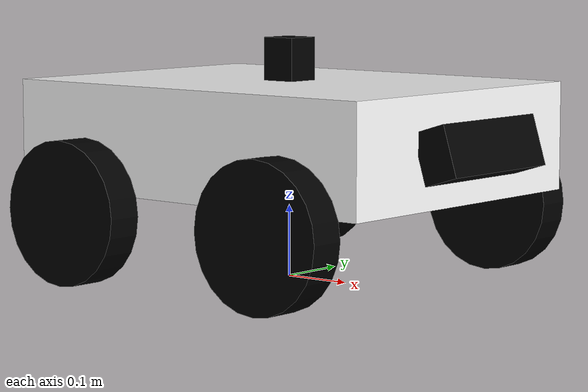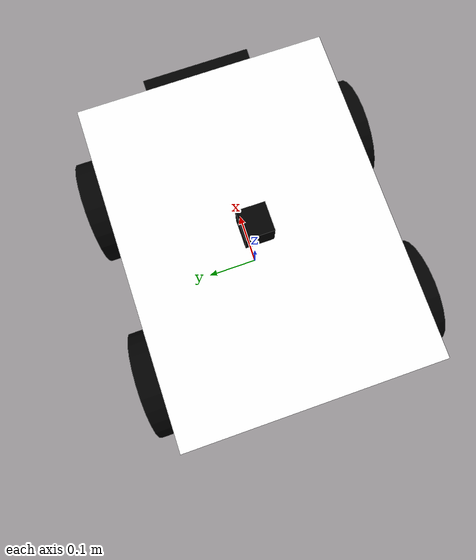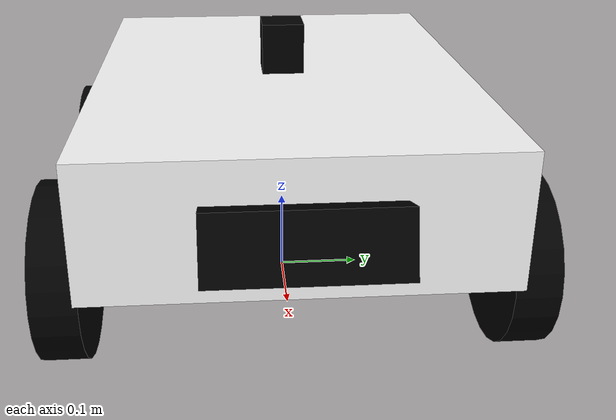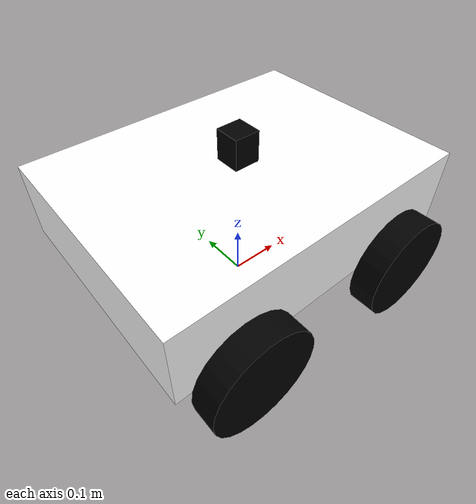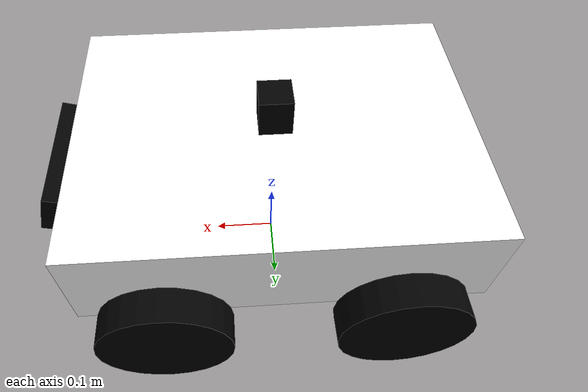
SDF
<?xml version="1.0" ?>
<sdf version="1.5">
  <model name="my_robot">
    <pose>0.0 0.0 0.0 0.0 0.0 0.0</pose>

    <!-- BASE LINK -->
    <link name="base_link"/>

    <!-- CHASSIS -->
    <link name="chassis">
      <inertial>
      <pose>0.0 0.0 0.2 0 0 0</pose>
        <mass>10</mass>
        <inertia>
          <ixx>0.1</ixx>
          <ixy>0.0</ixy>
          <ixz>0.0</ixz>
          <iyy>0.1</iyy>
          <iyz>0.0</iyz>
          <izz>0.1</izz>
        </inertia>
        <pose>0 0 0 0 0 0</pose>
      </inertial>
      <visual name="chassis_visual">
        <pose>0.0 0.0 0.2 0 0 0</pose>
        <geometry>
          <box>
            <size>0.6 0.45 0.15</size>
          </box>
        </geometry>
        <material>
          <ambient>1 1 1 1</ambient>
        </material>
      </visual>
      <collision name="chassis_collision">
        <pose>0.0 0.0 0.2 0 0 0</pose>
        <geometry>
          <box>
            <size>0.6 0.45 0.15</size>
          </box>
        </geometry>
      </collision>
    </link>

    <joint name="joint_chassis" type="fixed">
      <pose>0 0 0 0 0 0</pose>
      <parent>base_link</parent>
      <child>chassis</child>
      <axis>
        <xyz>0 0 0</xyz>
      </axis>
    </joint>

    <!-- FRONT LEFT WHEEL -->
    <link name="front_left_wheel">
      <pose>0.175 0.25 0.1 0 0 0</pose>
      <inertial>
        <mass>0.7</mass>
        <inertia>
          <ixx>0.1</ixx>
          <ixy>0.0</ixy>
          <ixz>0.0</ixz>
          <iyy>0.1</iyy>
          <iyz>0.0</iyz>
          <izz>0.1</izz>
        </inertia>
      </inertial>
      <collision name="collision">
        <pose>0 0 0 0 1.5707 1.5707</pose>
        <geometry>
          <cylinder>
            <radius>0.1</radius>
            <length>0.05</length>
          </cylinder>
        </geometry>
      </collision>
      <visual name="visual">
        <pose>0 0 0 0 1.5707 1.5707</pose>
        <geometry>
          <cylinder>
            <radius>0.1</radius>
            <length>0.05</length>
          </cylinder>
        </geometry>
        <material>
          <ambient>0 0 0 1</ambient>
        </material>
      </visual>
    </link>
    <joint name="joint_front_left_wheel" type="revolute">
      <pose>0 0 0 0 0 0</pose>
      <parent>chassis</parent>
      <child>front_left_wheel</child>
      <axis>
        <xyz>0 1 0</xyz>
      </axis>
    </joint>

    <!-- BACK LEFT WHEEL -->
    <link name="back_left_wheel">
      <pose>-0.175 0.25 0.1 0 0 0</pose>
      <inertial>
        <mass>0.7</mass>
        <inertia>
          <ixx>0.1</ixx>
          <ixy>0.0</ixy>
          <ixz>0.0</ixz>
          <iyy>0.1</iyy>
          <iyz>0.0</iyz>
          <izz>0.1</izz>
        </inertia>
      </inertial>
      <collision name="collision">
        <pose>0 0 0 0 1.5707 1.5707</pose>
        <geometry>
          <cylinder>
            <radius>0.1</radius>
            <length>0.05</length>
          </cylinder>
        </geometry>
      </collision>
      <visual name="visual">
        <pose>0 0 0 0 1.5707 1.5707</pose>
        <geometry>
          <cylinder>
            <radius>0.1</radius>
            <length>0.05</length>
          </cylinder>
        </geometry>
        <material>
          <ambient>0 0 0 1</ambient>
        </material>
      </visual>
    </link>
    <joint name="joint_back_left_wheel" type="revolute">
      <pose>0 0 0 0 0 0</pose>
      <parent>chassis</parent>
      <child>back_left_wheel</child>
      <axis>
        <xyz>0 1 0</xyz>
      </axis>
    </joint>

    <!-- FRONT RIGHT WHEEL -->
    <link name="front_right_wheel">
     <pose>0.175 -0.25 0.1 0 0 0</pose>
      <inertial>
        <mass>0.7</mass>
        <inertia>
          <ixx>0.1</ixx>
          <ixy>0.0</ixy>
          <ixz>0.0</ixz>
          <iyy>0.1</iyy>
          <iyz>0.0</iyz>
          <izz>0.1</izz>
        </inertia>
      </inertial>
      <collision name="collision">
        <pose>0 0 0 0 1.5707 1.5707</pose>
        <geometry>
          <cylinder>
            <radius>0.1</radius>
            <length>0.05</length>
          </cylinder>
        </geometry>
      </collision>
      <visual name="visual">
        <pose>0 0 0 0 1.5707 1.5707</pose>
        <geometry>
          <cylinder>
            <radius>0.1</radius>
            <length>0.05</length>
          </cylinder>
        </geometry>
        <material>
          <ambient>0 0 0 1</ambient>
        </material>
      </visual>
    </link>
    <joint name="joint_front_right_wheel" type="revolute">
      <pose>0 0 0 0 0 0</pose>
      <parent>chassis</parent>
      <child>front_right_wheel</child>
      <axis>
        <xyz>0 1 0</xyz>
      </axis>
    </joint>

    <!-- BACK RIGHT WHEEL -->
    <link name="back_right_wheel">
      <pose>-0.175 -0.25 0.1 0 0 0</pose>
      <inertial>
        <mass>0.7</mass>
        <inertia>
          <ixx>0.1</ixx>
          <ixy>0.0</ixy>
          <ixz>0.0</ixz>
          <iyy>0.1</iyy>
          <iyz>0.0</iyz>
          <izz>0.1</izz>
        </inertia>
      </inertial>
      <collision name="collision">
        <pose>0 0 0 0 1.5707 1.5707</pose>
        <geometry>
          <cylinder>
            <radius>0.1</radius>
            <length>0.05</length>
          </cylinder>
        </geometry>
      </collision>
      <visual name="visual">
        <pose>0 0 0 0 1.5707 1.5707</pose>
        <geometry>
          <cylinder>
            <radius>0.1</radius>
            <length>0.05</length>
          </cylinder>
        </geometry>
        <material>
          <ambient>0 0 0 1</ambient>
        </material>
      </visual>
    </link>
    <joint name="joint_back_right_wheel" type="revolute">
      <pose>0 0 0 0 0 0</pose>
      <parent>chassis</parent>
      <child>back_right_wheel</child>
      <axis>
        <xyz>0 1 0</xyz>
      </axis>
    </joint>

	  <!-- camera -->
    <link name="camera">
    <pose>0.325 0.0 0.2 0 -0.3 0.0</pose>
      <inertial>
        <mass>0.07</mass>
        <inertia>
          <ixx>0.1</ixx>
          <ixy>0.0</ixy>
          <ixz>0.0</ixz>
          <iyy>0.1</iyy>
          <iyz>0.0</iyz>
          <izz>0.1</izz>
        </inertia>
      </inertial>
      <collision name="collision">
        <pose>0 0 0 0 0 0</pose>
        <geometry>
          <box>
            <size>0.050 0.20 0.07</size>
          </box>
        </geometry>
      </collision>
      <visual name="visual">
        <pose>0 0 0 0 0 0</pose>
        <geometry>
          <box>
            <size>0.050 0.20 0.07</size>
          </box>
        </geometry>
        <material>
          <ambient>0 0 0 1</ambient>
        </material>
      </visual>
      <sensor name="camera" type="camera">
        <always_on>true</always_on>
        <visualize>true</visualize>
        <update_rate>30</update_rate>
        <camera name="picam">
          <horizontal_fov>1.085595</horizontal_fov>
          <image>
              <width>640</width>
              <height>480</height>
              <format>R8G8B8</format>
          </image>
          <clip>
              <near>0.03</near>
              <far>100</far>
          </clip>
          <noise>
            <type>gaussian</type>
            <mean>0.0</mean>
            <stddev>0.007</stddev>
          </noise>
        </camera>
          <plugin name="camera_driver" filename="libgazebo_ros_camera.so">
            <ros>
            </ros>
          </plugin>
      </sensor>
    </link>
    <joint name="joint_camera" type="fixed">
      <pose>0.325 0.0 0.2 0 0 0.2</pose>
      <parent>chassis</parent>
      <child>camera</child>
      <axis>
        <xyz>0 0 0</xyz>
      </axis>
    </joint>

    <!-- CAMERA -->

    <!-- lidar -->
    <link name="lidar">
      <pose>0 0 0.3 0 0 0 </pose>
      <inertial>
        <pose>0 0 0 0 0 0 </pose>
        <mass>0.010</mass>
        <inertia>
          <ixx>0.1</ixx>
          <ixy>0.0</ixy>
          <ixz>0.0</ixz>
          <iyy>0.1</iyy>
          <iyz>0.0</iyz>
          <izz>0.1</izz>
        </inertia>
      </inertial>
      <collision name="collision">
        <pose>0 0 0 0 0 0 </pose>
        <geometry>
          <box>
            <size>0.050 0.050 0.07</size>
          </box>
        </geometry>
      </collision>
      <visual name="visual">
        <pose>0 0 0 0 0 0</pose>
        <geometry>
          <box>
            <size>0.050 0.050 0.07</size>
          </box>
        </geometry>
        <material>
          <ambient>0 0 0 1</ambient>
        </material>
      </visual>

      <sensor name="lidara" type="ray">
        <pose>0 0 0.0 0 0 0</pose>
        <always_on>true</always_on>
        <visualize>true</visualize>
        <update_rate>5</update_rate>
        <ray>
          <scan>
            <horizontal>
              <samples>360</samples>
              <resolution>1.00000</resolution>
              <min_angle>0.000000</min_angle>
              <max_angle>6.280000</max_angle>
            </horizontal>
          </scan>
          <range>
            <min>0.120000</min>
            <max>3.5</max>
            <resolution>0.015000</resolution>
          </range>
          <noise>
            <type>gaussian</type>
            <mean>0.0</mean>
            <stddev>0.01</stddev>
          </noise>
        </ray>
        <plugin name="turtlebot3_lasersca" filename="libgazebo_ros_ray_sensor.so">
          <ros>
            <remapping>~/out:=scan</remapping>
          </ros>
          <output_type>sensor_msgs/LaserScan</output_type>
          <frame_name>lidar</frame_name>
        </plugin>
      </sensor>

    </link>

    <joint name="joint_lidar" type="fixed">
      <pose>0 0 0 0 0 0</pose>
      <parent>chassis</parent>
      <child>lidar</child>
      <axis>
        <xyz>0 0 0</xyz>
      </axis>
    </joint>

    <plugin name="wheel_drive_controller" filename="libgazebo_ros_diff_drive.so">

      <!-- wheels -->
      <num_wheel_pairs>2</num_wheel_pairs>
      <left_joint>joint_front_left_wheel</left_joint>
      <left_joint>joint_back_left_wheel</left_joint>
      <right_joint>joint_front_right_wheel</right_joint>
      <right_joint>joint_back_right_wheel</right_joint>

      <!-- kinematics -->
      <wheel_separation>0.5</wheel_separation>
      <wheel_diameter>0.2</wheel_diameter>
      <max_wheel_torque>20.0</max_wheel_torque>
      <max_wheel_acceleration>1.0</max_wheel_acceleration>

      <odometry_frame>odom</odometry_frame>
      <odometry_topic>odom</odometry_topic>
      <robot_base_frame>base_link</robot_base_frame>

      <!-- topic & re remappings -->
      <ros>
        <namespace>/</namespace>
        <argument>/cmd_vel:=cmd_vel</argument>
        <argument>/odom:=odom</argument>
      </ros>
      <!-- output -->
      <publish_odom>true</publish_odom>
      <publish_odom_tf>true</publish_odom_tf>
      <publish_wheel_tf>true</publish_wheel_tf>
      <update_rate>100.0</update_rate>
    </plugin>

  </model>
</sdf>
